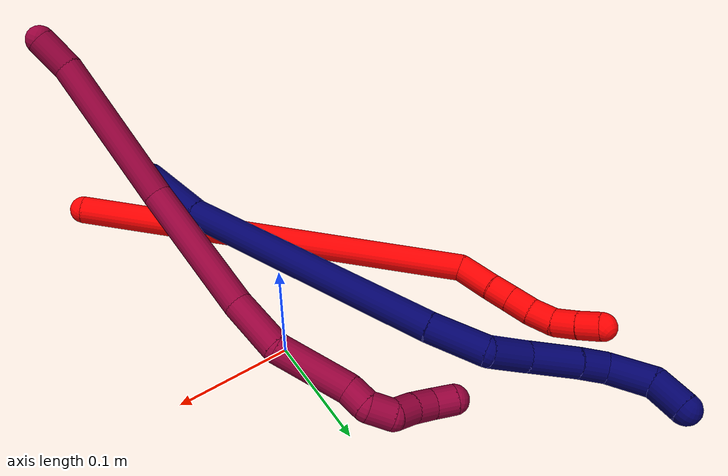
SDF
<sdf version="1.7">
 <world name="default">
  <model name="2">
   <static>0</static>
   <link name="2">
    <collision name="collision-cylinder-e_1_1_4">
     <pose>-0.105956 0.101033 -0.103489 -2.3682 -0.632273 1.35352</pose>
     <geometry><cylinder><radius>0.0125</radius><length>0.358577</length></cylinder></geometry>
     <surface>
      <friction><ode><mu>1.16</mu><mu2>1.16</mu2><slip1>0</slip1><slip2>0</slip2></ode></friction>
      <contact><ode><kp>1e+06</kp><kd>1</kd><max_vel>0</max_vel><min_depth>0.001</min_depth></ode></contact>
     </surface>
    </collision>
    <visual name="visual-cylinder-e_1_1_4">
     <pose>-0.105956 0.101033 -0.103489 -2.3682 -0.632273 1.35352</pose>
     <geometry><cylinder><radius>0.0125</radius><length>0.358577</length></cylinder></geometry>
     <material><ambient>1 0 0 1</ambient></material>
    </visual>
    <collision name="collision-cylinder-e_2_4_5">
     <pose>-0.214837 0.205579 -0.22439 -2.9425 -0.163216 1.37234</pose>
     <geometry><cylinder><radius>0.0125</radius><length>0.036004</length></cylinder></geometry>
     <surface>
      <friction><ode><mu>1.16</mu><mu2>1.16</mu2><slip1>0</slip1><slip2>0</slip2></ode></friction>
      <contact><ode><kp>1e+06</kp><kd>1</kd><max_vel>0</max_vel><min_depth>0.001</min_depth></ode></contact>
     </surface>
    </collision>
    <visual name="visual-cylinder-e_2_4_5">
     <pose>-0.214837 0.205579 -0.22439 -2.9425 -0.163216 1.37234</pose>
     <geometry><cylinder><radius>0.0125</radius><length>0.036004</length></cylinder></geometry>
     <material><ambient>1 0 0 1</ambient></material>
    </visual>
    <collision name="collision-cylinder-e_3_5_6">
     <pose>-0.220353 0.211334 -0.251234 -2.90826 -0.261164 1.68439</pose>
     <geometry><cylinder><radius>0.0125</radius><length>0.02007</length></cylinder></geometry>
     <surface>
      <friction><ode><mu>1.16</mu><mu2>1.16</mu2><slip1>0</slip1><slip2>0</slip2></ode></friction>
      <contact><ode><kp>1e+06</kp><kd>1</kd><max_vel>0</max_vel><min_depth>0.001</min_depth></ode></contact>
     </surface>
    </collision>
    <visual name="visual-cylinder-e_3_5_6">
     <pose>-0.220353 0.211334 -0.251234 -2.90826 -0.261164 1.68439</pose>
     <geometry><cylinder><radius>0.0125</radius><length>0.02007</length></cylinder></geometry>
     <material><ambient>1 0 0 1</ambient></material>
    </visual>
    <collision name="collision-cylinder-e_4_6_7">
     <pose>-0.225809 0.215929 -0.270898 -2.91553 -0.266358 1.73575</pose>
     <geometry><cylinder><radius>0.0125</radius><length>0.021766</length></cylinder></geometry>
     <surface>
      <friction><ode><mu>1.16</mu><mu2>1.16</mu2><slip1>0</slip1><slip2>0</slip2></ode></friction>
      <contact><ode><kp>1e+06</kp><kd>1</kd><max_vel>0</max_vel><min_depth>0.001</min_depth></ode></contact>
     </surface>
    </collision>
    <visual name="visual-cylinder-e_4_6_7">
     <pose>-0.225809 0.215929 -0.270898 -2.91553 -0.266358 1.73575</pose>
     <geometry><cylinder><radius>0.0125</radius><length>0.021766</length></cylinder></geometry>
     <material><ambient>1 0 0 1</ambient></material>
    </visual>
    <collision name="collision-cylinder-e_5_7_8">
     <pose>-0.230311 0.222014 -0.291518 -2.79666 -0.147308 0.801338</pose>
     <geometry><cylinder><radius>0.0125</radius><length>0.022317</length></cylinder></geometry>
     <surface>
      <friction><ode><mu>1.16</mu><mu2>1.16</mu2><slip1>0</slip1><slip2>0</slip2></ode></friction>
      <contact><ode><kp>1e+06</kp><kd>1</kd><max_vel>0</max_vel><min_depth>0.001</min_depth></ode></contact>
     </surface>
    </collision>
    <visual name="visual-cylinder-e_5_7_8">
     <pose>-0.230311 0.222014 -0.291518 -2.79666 -0.147308 0.801338</pose>
     <geometry><cylinder><radius>0.0125</radius><length>0.022317</length></cylinder></geometry>
     <material><ambient>1 0 0 1</ambient></material>
    </visual>
    <collision name="collision-cylinder-e_6_8_9">
     <pose>-0.232116 0.232036 -0.310396 -2.50399 -0.015827 0.047943</pose>
     <geometry><cylinder><radius>0.0125</radius><length>0.021135</length></cylinder></geometry>
     <surface>
      <friction><ode><mu>1.16</mu><mu2>1.16</mu2><slip1>0</slip1><slip2>0</slip2></ode></friction>
      <contact><ode><kp>1e+06</kp><kd>1</kd><max_vel>0</max_vel><min_depth>0.001</min_depth></ode></contact>
     </surface>
    </collision>
    <visual name="visual-cylinder-e_6_8_9">
     <pose>-0.232116 0.232036 -0.310396 -2.50399 -0.015827 0.047943</pose>
     <geometry><cylinder><radius>0.0125</radius><length>0.021135</length></cylinder></geometry>
     <material><ambient>1 0 0 1</ambient></material>
    </visual>
    <collision name="collision-cylinder-e_7_9_2">
     <pose>-0.232449 0.24476 -0.326625 -2.44806 -0.016413 0.045412</pose>
     <geometry><cylinder><radius>0.0125</radius><length>0.020131</length></cylinder></geometry>
     <surface>
      <friction><ode><mu>1.16</mu><mu2>1.16</mu2><slip1>0</slip1><slip2>0</slip2></ode></friction>
      <contact><ode><kp>1e+06</kp><kd>1</kd><max_vel>0</max_vel><min_depth>0.001</min_depth></ode></contact>
     </surface>
    </collision>
    <visual name="visual-cylinder-e_7_9_2">
     <pose>-0.232449 0.24476 -0.326625 -2.44806 -0.016413 0.045412</pose>
     <geometry><cylinder><radius>0.0125</radius><length>0.020131</length></cylinder></geometry>
     <material><ambient>1 0 0 1</ambient></material>
    </visual>
    <collision name="collision-sphere-2">
     <pose>-0.232614 0.251193 -0.334365 0 -0 0</pose>
     <geometry><sphere><radius>0.0125</radius></sphere></geometry>
     <surface>
      <friction><ode><mu>1.16</mu><mu2>1.16</mu2><slip1>0</slip1><slip2>0</slip2></ode></friction>
      <contact><ode><kp>1e+06</kp><kd>1</kd><max_vel>0</max_vel><min_depth>0.001</min_depth></ode></contact>
     </surface>
    </collision>
    <visual name="visual-sphere-2">
     <pose>-0.232614 0.251193 -0.334365 0 -0 0</pose>
     <geometry><sphere><radius>0.0125</radius></sphere></geometry>
     <material><ambient>1 0 0 1</ambient></material>
    </visual>
    <collision name="collision-sphere-9">
     <pose>-0.232284 0.238326 -0.318886 0 -0 0</pose>
     <geometry><sphere><radius>0.0125</radius></sphere></geometry>
     <surface>
      <friction><ode><mu>1.16</mu><mu2>1.16</mu2><slip1>0</slip1><slip2>0</slip2></ode></friction>
      <contact><ode><kp>1e+06</kp><kd>1</kd><max_vel>0</max_vel><min_depth>0.001</min_depth></ode></contact>
     </surface>
    </collision>
    <visual name="visual-sphere-9">
     <pose>-0.232284 0.238326 -0.318886 0 -0 0</pose>
     <geometry><sphere><radius>0.0125</radius></sphere></geometry>
     <material><ambient>1 0 0 1</ambient></material>
    </visual>
    <collision name="collision-sphere-4">
     <pose>-0.211912 0.202066 -0.206979 0 -0 0</pose>
     <geometry><sphere><radius>0.0125</radius></sphere></geometry>
     <surface>
      <friction><ode><mu>1.16</mu><mu2>1.16</mu2><slip1>0</slip1><slip2>0</slip2></ode></friction>
      <contact><ode><kp>1e+06</kp><kd>1</kd><max_vel>0</max_vel><min_depth>0.001</min_depth></ode></contact>
     </surface>
    </collision>
    <visual name="visual-sphere-4">
     <pose>-0.211912 0.202066 -0.206979 0 -0 0</pose>
     <geometry><sphere><radius>0.0125</radius></sphere></geometry>
     <material><ambient>1 0 0 1</ambient></material>
    </visual>
    <collision name="collision-sphere-1">
     <geometry><sphere><radius>0.0125</radius></sphere></geometry>
     <surface>
      <friction><ode><mu>1.16</mu><mu2>1.16</mu2><slip1>0</slip1><slip2>0</slip2></ode></friction>
      <contact><ode><kp>1e+06</kp><kd>1</kd><max_vel>0</max_vel><min_depth>0.001</min_depth></ode></contact>
     </surface>
    </collision>
    <visual name="visual-sphere-1">
     <geometry><sphere><radius>0.0125</radius></sphere></geometry>
     <material><ambient>1 0 0 1</ambient></material>
    </visual>
    <collision name="collision-sphere-8">
     <pose>-0.231949 0.225746 -0.301905 0 -0 0</pose>
     <geometry><sphere><radius>0.0125</radius></sphere></geometry>
     <surface>
      <friction><ode><mu>1.16</mu><mu2>1.16</mu2><slip1>0</slip1><slip2>0</slip2></ode></friction>
      <contact><ode><kp>1e+06</kp><kd>1</kd><max_vel>0</max_vel><min_depth>0.001</min_depth></ode></contact>
     </surface>
    </collision>
    <visual name="visual-sphere-8">
     <pose>-0.231949 0.225746 -0.301905 0 -0 0</pose>
     <geometry><sphere><radius>0.0125</radius></sphere></geometry>
     <material><ambient>1 0 0 1</ambient></material>
    </visual>
    <collision name="collision-sphere-5">
     <pose>-0.217762 0.209092 -0.241802 0 -0 0</pose>
     <geometry><sphere><radius>0.0125</radius></sphere></geometry>
     <surface>
      <friction><ode><mu>1.16</mu><mu2>1.16</mu2><slip1>0</slip1><slip2>0</slip2></ode></friction>
      <contact><ode><kp>1e+06</kp><kd>1</kd><max_vel>0</max_vel><min_depth>0.001</min_depth></ode></contact>
     </surface>
    </collision>
    <visual name="visual-sphere-5">
     <pose>-0.217762 0.209092 -0.241802 0 -0 0</pose>
     <geometry><sphere><radius>0.0125</radius></sphere></geometry>
     <material><ambient>1 0 0 1</ambient></material>
    </visual>
    <collision name="collision-sphere-6">
     <pose>-0.222944 0.213575 -0.260666 0 -0 0</pose>
     <geometry><sphere><radius>0.0125</radius></sphere></geometry>
     <surface>
      <friction><ode><mu>1.16</mu><mu2>1.16</mu2><slip1>0</slip1><slip2>0</slip2></ode></friction>
      <contact><ode><kp>1e+06</kp><kd>1</kd><max_vel>0</max_vel><min_depth>0.001</min_depth></ode></contact>
     </surface>
    </collision>
    <visual name="visual-sphere-6">
     <pose>-0.222944 0.213575 -0.260666 0 -0 0</pose>
     <geometry><sphere><radius>0.0125</radius></sphere></geometry>
     <material><ambient>1 0 0 1</ambient></material>
    </visual>
    <collision name="collision-sphere-7">
     <pose>-0.228673 0.218282 -0.281131 0 -0 0</pose>
     <geometry><sphere><radius>0.0125</radius></sphere></geometry>
     <surface>
      <friction><ode><mu>1.16</mu><mu2>1.16</mu2><slip1>0</slip1><slip2>0</slip2></ode></friction>
      <contact><ode><kp>1e+06</kp><kd>1</kd><max_vel>0</max_vel><min_depth>0.001</min_depth></ode></contact>
     </surface>
    </collision>
    <visual name="visual-sphere-7">
     <pose>-0.228673 0.218282 -0.281131 0 -0 0</pose>
     <geometry><sphere><radius>0.0125</radius></sphere></geometry>
     <material><ambient>1 0 0 1</ambient></material>
    </visual>
    <inertial>
     <pose>-0.139582 0.134714 -0.151536 0 -0 0</pose>
     <mass>0.5</mass>
     <inertia>
      <ixx>0.003704</ixx>
      <ixy>0</ixy>
      <ixz>0</ixz>
      <iyy>0.004023</iyy>
      <iyz>0</iyz>
      <izz>7.8e-05</izz>
     </inertia>
    </inertial>
   </link>
   <pose>0.09243 -0.210574 0.05069 1.63882 -0.922378 -0.121097</pose>
  </model>
  <model name="7">
   <static>0</static>
   <link name="7">
    <collision name="collision-cylinder-e_1_1_4">
     <pose>-0.007936 0.030449 0.004948 -1.40969 -0.251791 0.214488</pose>
     <geometry><cylinder><radius>0.0125</radius><length>0.063707</length></cylinder></geometry>
     <surface>
      <friction><ode><mu>1.16</mu><mu2>1.16</mu2><slip1>0</slip1><slip2>0</slip2></ode></friction>
      <contact><ode><kp>1e+06</kp><kd>1</kd><max_vel>0</max_vel><min_depth>0.001</min_depth></ode></contact>
     </surface>
    </collision>
    <visual name="visual-cylinder-e_1_1_4">
     <pose>-0.007936 0.030449 0.004948 -1.40969 -0.251791 0.214488</pose>
     <geometry><cylinder><radius>0.0125</radius><length>0.063707</length></cylinder></geometry>
     <material><ambient>0.003922 0 0.403922 1</ambient></material>
    </visual>
    <collision name="collision-cylinder-e_2_4_5">
     <pose>-0.0639 0.159757 0.037023 -1.303 -0.438147 0.336361</pose>
     <geometry><cylinder><radius>0.0125</radius><length>0.22641</length></cylinder></geometry>
     <surface>
      <friction><ode><mu>1.16</mu><mu2>1.16</mu2><slip1>0</slip1><slip2>0</slip2></ode></friction>
      <contact><ode><kp>1e+06</kp><kd>1</kd><max_vel>0</max_vel><min_depth>0.001</min_depth></ode></contact>
     </surface>
    </collision>
    <visual name="visual-cylinder-e_2_4_5">
     <pose>-0.0639 0.159757 0.037023 -1.303 -0.438147 0.336361</pose>
     <geometry><cylinder><radius>0.0125</radius><length>0.22641</length></cylinder></geometry>
     <material><ambient>0.003922 0 0.403922 1</ambient></material>
    </visual>
    <collision name="collision-cylinder-e_3_5_6">
     <pose>-0.12315 0.278462 0.070463 -1.26275 -0.494157 0.364777</pose>
     <geometry><cylinder><radius>0.0125</radius><length>0.047318</length></cylinder></geometry>
     <surface>
      <friction><ode><mu>1.16</mu><mu2>1.16</mu2><slip1>0</slip1><slip2>0</slip2></ode></friction>
      <contact><ode><kp>1e+06</kp><kd>1</kd><max_vel>0</max_vel><min_depth>0.001</min_depth></ode></contact>
     </surface>
    </collision>
    <visual name="visual-cylinder-e_3_5_6">
     <pose>-0.12315 0.278462 0.070463 -1.26275 -0.494157 0.364777</pose>
     <geometry><cylinder><radius>0.0125</radius><length>0.047318</length></cylinder></geometry>
     <material><ambient>0.003922 0 0.403922 1</ambient></material>
    </visual>
    <collision name="collision-cylinder-e_4_6_7">
     <pose>-0.149595 0.305518 0.077428 -1.48088 -1.12702 1.04734</pose>
     <geometry><cylinder><radius>0.0125</radius><length>0.033711</length></cylinder></geometry>
     <surface>
      <friction><ode><mu>1.16</mu><mu2>1.16</mu2><slip1>0</slip1><slip2>0</slip2></ode></friction>
      <contact><ode><kp>1e+06</kp><kd>1</kd><max_vel>0</max_vel><min_depth>0.001</min_depth></ode></contact>
     </surface>
    </collision>
    <visual name="visual-cylinder-e_4_6_7">
     <pose>-0.149595 0.305518 0.077428 -1.48088 -1.12702 1.04734</pose>
     <geometry><cylinder><radius>0.0125</radius><length>0.033711</length></cylinder></geometry>
     <material><ambient>0.003922 0 0.403922 1</ambient></material>
    </visual>
    <collision name="collision-cylinder-e_5_7_8">
     <pose>-0.181964 0.323612 0.08207 -1.21931 -0.976211 0.710209</pose>
     <geometry><cylinder><radius>0.0125</radius><length>0.041398</length></cylinder></geometry>
     <surface>
      <friction><ode><mu>1.16</mu><mu2>1.16</mu2><slip1>0</slip1><slip2>0</slip2></ode></friction>
      <contact><ode><kp>1e+06</kp><kd>1</kd><max_vel>0</max_vel><min_depth>0.001</min_depth></ode></contact>
     </surface>
    </collision>
    <visual name="visual-cylinder-e_5_7_8">
     <pose>-0.181964 0.323612 0.08207 -1.21931 -0.976211 0.710209</pose>
     <geometry><cylinder><radius>0.0125</radius><length>0.041398</length></cylinder></geometry>
     <material><ambient>0.003922 0 0.403922 1</ambient></material>
    </visual>
    <collision name="collision-cylinder-e_6_8_9">
     <pose>-0.209047 0.340933 0.087671 -1.32586 -0.982193 0.79113</pose>
     <geometry><cylinder><radius>0.0125</radius><length>0.023894</length></cylinder></geometry>
     <surface>
      <friction><ode><mu>1.16</mu><mu2>1.16</mu2><slip1>0</slip1><slip2>0</slip2></ode></friction>
      <contact><ode><kp>1e+06</kp><kd>1</kd><max_vel>0</max_vel><min_depth>0.001</min_depth></ode></contact>
     </surface>
    </collision>
    <visual name="visual-cylinder-e_6_8_9">
     <pose>-0.209047 0.340933 0.087671 -1.32586 -0.982193 0.79113</pose>
     <geometry><cylinder><radius>0.0125</radius><length>0.023894</length></cylinder></geometry>
     <material><ambient>0.003922 0 0.403922 1</ambient></material>
    </visual>
    <collision name="collision-cylinder-e_7_9_10">
     <pose>-0.226194 0.361922 0.096683 -1.1002 -0.415826 0.257313</pose>
     <geometry><cylinder><radius>0.0125</radius><length>0.035702</length></cylinder></geometry>
     <surface>
      <friction><ode><mu>1.16</mu><mu2>1.16</mu2><slip1>0</slip1><slip2>0</slip2></ode></friction>
      <contact><ode><kp>1e+06</kp><kd>1</kd><max_vel>0</max_vel><min_depth>0.001</min_depth></ode></contact>
     </surface>
    </collision>
    <visual name="visual-cylinder-e_7_9_10">
     <pose>-0.226194 0.361922 0.096683 -1.1002 -0.415826 0.257313</pose>
     <geometry><cylinder><radius>0.0125</radius><length>0.035702</length></cylinder></geometry>
     <material><ambient>0.003922 0 0.403922 1</ambient></material>
    </visual>
    <collision name="collision-cylinder-e_8_10_2">
     <pose>-0.233354 0.390204 0.106456 -1.39995 0.003679 -0.003099</pose>
     <geometry><cylinder><radius>0.0125</radius><length>0.027861</length></cylinder></geometry>
     <surface>
      <friction><ode><mu>1.16</mu><mu2>1.16</mu2><slip1>0</slip1><slip2>0</slip2></ode></friction>
      <contact><ode><kp>1e+06</kp><kd>1</kd><max_vel>0</max_vel><min_depth>0.001</min_depth></ode></contact>
     </surface>
    </collision>
    <visual name="visual-cylinder-e_8_10_2">
     <pose>-0.233354 0.390204 0.106456 -1.39995 0.003679 -0.003099</pose>
     <geometry><cylinder><radius>0.0125</radius><length>0.027861</length></cylinder></geometry>
     <material><ambient>0.003922 0 0.403922 1</ambient></material>
    </visual>
    <collision name="collision-sphere-2">
     <pose>-0.233302 0.403932 0.108824 0 -0 0</pose>
     <geometry><sphere><radius>0.0125</radius></sphere></geometry>
     <surface>
      <friction><ode><mu>1.16</mu><mu2>1.16</mu2><slip1>0</slip1><slip2>0</slip2></ode></friction>
      <contact><ode><kp>1e+06</kp><kd>1</kd><max_vel>0</max_vel><min_depth>0.001</min_depth></ode></contact>
     </surface>
    </collision>
    <visual name="visual-sphere-2">
     <pose>-0.233302 0.403932 0.108824 0 -0 0</pose>
     <geometry><sphere><radius>0.0125</radius></sphere></geometry>
     <material><ambient>0.003922 0 0.403922 1</ambient></material>
    </visual>
    <collision name="collision-sphere-10">
     <pose>-0.233405 0.376477 0.104087 0 -0 0</pose>
     <geometry><sphere><radius>0.0125</radius></sphere></geometry>
     <surface>
      <friction><ode><mu>1.16</mu><mu2>1.16</mu2><slip1>0</slip1><slip2>0</slip2></ode></friction>
      <contact><ode><kp>1e+06</kp><kd>1</kd><max_vel>0</max_vel><min_depth>0.001</min_depth></ode></contact>
     </surface>
    </collision>
    <visual name="visual-sphere-10">
     <pose>-0.233405 0.376477 0.104087 0 -0 0</pose>
     <geometry><sphere><radius>0.0125</radius></sphere></geometry>
     <material><ambient>0.003922 0 0.403922 1</ambient></material>
    </visual>
    <collision name="collision-sphere-9">
     <pose>-0.218983 0.347368 0.089279 0 -0 0</pose>
     <geometry><sphere><radius>0.0125</radius></sphere></geometry>
     <surface>
      <friction><ode><mu>1.16</mu><mu2>1.16</mu2><slip1>0</slip1><slip2>0</slip2></ode></friction>
      <contact><ode><kp>1e+06</kp><kd>1</kd><max_vel>0</max_vel><min_depth>0.001</min_depth></ode></contact>
     </surface>
    </collision>
    <visual name="visual-sphere-9">
     <pose>-0.218983 0.347368 0.089279 0 -0 0</pose>
     <geometry><sphere><radius>0.0125</radius></sphere></geometry>
     <material><ambient>0.003922 0 0.403922 1</ambient></material>
    </visual>
    <collision name="collision-sphere-4">
     <pose>-0.015872 0.060899 0.009897 0 -0 0</pose>
     <geometry><sphere><radius>0.0125</radius></sphere></geometry>
     <surface>
      <friction><ode><mu>1.16</mu><mu2>1.16</mu2><slip1>0</slip1><slip2>0</slip2></ode></friction>
      <contact><ode><kp>1e+06</kp><kd>1</kd><max_vel>0</max_vel><min_depth>0.001</min_depth></ode></contact>
     </surface>
    </collision>
    <visual name="visual-sphere-4">
     <pose>-0.015872 0.060899 0.009897 0 -0 0</pose>
     <geometry><sphere><radius>0.0125</radius></sphere></geometry>
     <material><ambient>0.003922 0 0.403922 1</ambient></material>
    </visual>
    <collision name="collision-sphere-1">
     <geometry><sphere><radius>0.0125</radius></sphere></geometry>
     <surface>
      <friction><ode><mu>1.16</mu><mu2>1.16</mu2><slip1>0</slip1><slip2>0</slip2></ode></friction>
      <contact><ode><kp>1e+06</kp><kd>1</kd><max_vel>0</max_vel><min_depth>0.001</min_depth></ode></contact>
     </surface>
    </collision>
    <visual name="visual-sphere-1">
     <geometry><sphere><radius>0.0125</radius></sphere></geometry>
     <material><ambient>0.003922 0 0.403922 1</ambient></material>
    </visual>
    <collision name="collision-sphere-8">
     <pose>-0.199111 0.334498 0.086062 0 -0 0</pose>
     <geometry><sphere><radius>0.0125</radius></sphere></geometry>
     <surface>
      <friction><ode><mu>1.16</mu><mu2>1.16</mu2><slip1>0</slip1><slip2>0</slip2></ode></friction>
      <contact><ode><kp>1e+06</kp><kd>1</kd><max_vel>0</max_vel><min_depth>0.001</min_depth></ode></contact>
     </surface>
    </collision>
    <visual name="visual-sphere-8">
     <pose>-0.199111 0.334498 0.086062 0 -0 0</pose>
     <geometry><sphere><radius>0.0125</radius></sphere></geometry>
     <material><ambient>0.003922 0 0.403922 1</ambient></material>
    </visual>
    <collision name="collision-sphere-5">
     <pose>-0.111929 0.258614 0.064148 0 -0 0</pose>
     <geometry><sphere><radius>0.0125</radius></sphere></geometry>
     <surface>
      <friction><ode><mu>1.16</mu><mu2>1.16</mu2><slip1>0</slip1><slip2>0</slip2></ode></friction>
      <contact><ode><kp>1e+06</kp><kd>1</kd><max_vel>0</max_vel><min_depth>0.001</min_depth></ode></contact>
     </surface>
    </collision>
    <visual name="visual-sphere-5">
     <pose>-0.111929 0.258614 0.064148 0 -0 0</pose>
     <geometry><sphere><radius>0.0125</radius></sphere></geometry>
     <material><ambient>0.003922 0 0.403922 1</ambient></material>
    </visual>
    <collision name="collision-sphere-6">
     <pose>-0.134371 0.298311 0.076779 0 -0 0</pose>
     <geometry><sphere><radius>0.0125</radius></sphere></geometry>
     <surface>
      <friction><ode><mu>1.16</mu><mu2>1.16</mu2><slip1>0</slip1><slip2>0</slip2></ode></friction>
      <contact><ode><kp>1e+06</kp><kd>1</kd><max_vel>0</max_vel><min_depth>0.001</min_depth></ode></contact>
     </surface>
    </collision>
    <visual name="visual-sphere-6">
     <pose>-0.134371 0.298311 0.076779 0 -0 0</pose>
     <geometry><sphere><radius>0.0125</radius></sphere></geometry>
     <material><ambient>0.003922 0 0.403922 1</ambient></material>
    </visual>
    <collision name="collision-sphere-7">
     <pose>-0.164818 0.312726 0.078078 0 -0 0</pose>
     <geometry><sphere><radius>0.0125</radius></sphere></geometry>
     <surface>
      <friction><ode><mu>1.16</mu><mu2>1.16</mu2><slip1>0</slip1><slip2>0</slip2></ode></friction>
      <contact><ode><kp>1e+06</kp><kd>1</kd><max_vel>0</max_vel><min_depth>0.001</min_depth></ode></contact>
     </surface>
    </collision>
    <visual name="visual-sphere-7">
     <pose>-0.164818 0.312726 0.078078 0 -0 0</pose>
     <geometry><sphere><radius>0.0125</radius></sphere></geometry>
     <material><ambient>0.003922 0 0.403922 1</ambient></material>
    </visual>
    <inertial>
     <pose>-0.105897 0.213843 0.053104 0 -0 0</pose>
     <mass>0.5</mass>
     <inertia>
      <ixx>0.001167</ixx>
      <ixy>0</ixy>
      <ixz>0</ixz>
      <iyy>0.000738</iyy>
      <iyz>0</iyz>
      <izz>-0.000451</izz>
     </inertia>
    </inertial>
   </link>
   <pose>0.032927 -0.174883 0.088446 -0.1494 -0.349114 -0.007003</pose>
  </model>
  <model name="8">
   <static>0</static>
   <link name="8">
    <collision name="collision-cylinder-e_1_1_4">
     <pose>-0.008348 0.010872 -0.007399 -2.16838 -0.565583 1.00456</pose>
     <geometry><cylinder><radius>0.0125</radius><length>0.031153</length></cylinder></geometry>
     <surface>
      <friction><ode><mu>1.16</mu><mu2>1.16</mu2><slip1>0</slip1><slip2>0</slip2></ode></friction>
      <contact><ode><kp>1e+06</kp><kd>1</kd><max_vel>0</max_vel><min_depth>0.001</min_depth></ode></contact>
     </surface>
    </collision>
    <visual name="visual-cylinder-e_1_1_4">
     <pose>-0.008348 0.010872 -0.007399 -2.16838 -0.565583 1.00456</pose>
     <geometry><cylinder><radius>0.0125</radius><length>0.031153</length></cylinder></geometry>
     <material><ambient>0.584314 0 0.227451 1</ambient></material>
    </visual>
    <collision name="collision-cylinder-e_2_4_5">
     <pose>-0.038805 0.072912 -0.05177 -2.19648 -0.336889 0.642308</pose>
     <geometry><cylinder><radius>0.0125</radius><length>0.133775</length></cylinder></geometry>
     <surface>
      <friction><ode><mu>1.16</mu><mu2>1.16</mu2><slip1>0</slip1><slip2>0</slip2></ode></friction>
      <contact><ode><kp>1e+06</kp><kd>1</kd><max_vel>0</max_vel><min_depth>0.001</min_depth></ode></contact>
     </surface>
    </collision>
    <visual name="visual-cylinder-e_2_4_5">
     <pose>-0.038805 0.072912 -0.05177 -2.19648 -0.336889 0.642308</pose>
     <geometry><cylinder><radius>0.0125</radius><length>0.133775</length></cylinder></geometry>
     <material><ambient>0.584314 0 0.227451 1</ambient></material>
    </visual>
    <collision name="collision-cylinder-e_3_5_6">
     <pose>-0.071807 0.17633 -0.114322 -2.0261 -0.185091 0.295391</pose>
     <geometry><cylinder><radius>0.0125</radius><length>0.118373</length></cylinder></geometry>
     <surface>
      <friction><ode><mu>1.16</mu><mu2>1.16</mu2><slip1>0</slip1><slip2>0</slip2></ode></friction>
      <contact><ode><kp>1e+06</kp><kd>1</kd><max_vel>0</max_vel><min_depth>0.001</min_depth></ode></contact>
     </surface>
    </collision>
    <visual name="visual-cylinder-e_3_5_6">
     <pose>-0.071807 0.17633 -0.114322 -2.0261 -0.185091 0.295391</pose>
     <geometry><cylinder><radius>0.0125</radius><length>0.118373</length></cylinder></geometry>
     <material><ambient>0.584314 0 0.227451 1</ambient></material>
    </visual>
    <collision name="collision-cylinder-e_4_6_7">
     <pose>-0.084466 0.253115 -0.146247 -1.82377 -0.069578 0.089828</pose>
     <geometry><cylinder><radius>0.0125</radius><length>0.050808</length></cylinder></geometry>
     <surface>
      <friction><ode><mu>1.16</mu><mu2>1.16</mu2><slip1>0</slip1><slip2>0</slip2></ode></friction>
      <contact><ode><kp>1e+06</kp><kd>1</kd><max_vel>0</max_vel><min_depth>0.001</min_depth></ode></contact>
     </surface>
    </collision>
    <visual name="visual-cylinder-e_4_6_7">
     <pose>-0.084466 0.253115 -0.146247 -1.82377 -0.069578 0.089828</pose>
     <geometry><cylinder><radius>0.0125</radius><length>0.050808</length></cylinder></geometry>
     <material><ambient>0.584314 0 0.227451 1</ambient></material>
    </visual>
    <collision name="collision-cylinder-e_5_7_8">
     <pose>-0.100798 0.306084 -0.1566 -1.71091 -0.469449 0.537153</pose>
     <geometry><cylinder><radius>0.0125</radius><length>0.064395</length></cylinder></geometry>
     <surface>
      <friction><ode><mu>1.16</mu><mu2>1.16</mu2><slip1>0</slip1><slip2>0</slip2></ode></friction>
      <contact><ode><kp>1e+06</kp><kd>1</kd><max_vel>0</max_vel><min_depth>0.001</min_depth></ode></contact>
     </surface>
    </collision>
    <visual name="visual-cylinder-e_5_7_8">
     <pose>-0.100798 0.306084 -0.1566 -1.71091 -0.469449 0.537153</pose>
     <geometry><cylinder><radius>0.0125</radius><length>0.064395</length></cylinder></geometry>
     <material><ambient>0.584314 0 0.227451 1</ambient></material>
    </visual>
    <collision name="collision-cylinder-e_6_8_9">
     <pose>-0.116003 0.344344 -0.162374 -1.74842 -0.063943 0.076433</pose>
     <geometry><cylinder><radius>0.0125</radius><length>0.020009</length></cylinder></geometry>
     <surface>
      <friction><ode><mu>1.16</mu><mu2>1.16</mu2><slip1>0</slip1><slip2>0</slip2></ode></friction>
      <contact><ode><kp>1e+06</kp><kd>1</kd><max_vel>0</max_vel><min_depth>0.001</min_depth></ode></contact>
     </surface>
    </collision>
    <visual name="visual-cylinder-e_6_8_9">
     <pose>-0.116003 0.344344 -0.162374 -1.74842 -0.063943 0.076433</pose>
     <geometry><cylinder><radius>0.0125</radius><length>0.020009</length></cylinder></geometry>
     <material><ambient>0.584314 0 0.227451 1</ambient></material>
    </visual>
    <collision name="collision-cylinder-e_7_9_10">
     <pose>-0.123708 0.362168 -0.164501 -1.61615 -0.72313 0.753663</pose>
     <geometry><cylinder><radius>0.0125</radius><length>0.021354</length></cylinder></geometry>
     <surface>
      <friction><ode><mu>1.16</mu><mu2>1.16</mu2><slip1>0</slip1><slip2>0</slip2></ode></friction>
      <contact><ode><kp>1e+06</kp><kd>1</kd><max_vel>0</max_vel><min_depth>0.001</min_depth></ode></contact>
     </surface>
    </collision>
    <visual name="visual-cylinder-e_7_9_10">
     <pose>-0.123708 0.362168 -0.164501 -1.61615 -0.72313 0.753663</pose>
     <geometry><cylinder><radius>0.0125</radius><length>0.021354</length></cylinder></geometry>
     <material><ambient>0.584314 0 0.227451 1</ambient></material>
    </visual>
    <collision name="collision-cylinder-e_8_10_11">
     <pose>-0.140595 0.371435 -0.163433 -0.726196 -1.37832 0.606762</pose>
     <geometry><cylinder><radius>0.0125</radius><length>0.020012</length></cylinder></geometry>
     <surface>
      <friction><ode><mu>1.16</mu><mu2>1.16</mu2><slip1>0</slip1><slip2>0</slip2></ode></friction>
      <contact><ode><kp>1e+06</kp><kd>1</kd><max_vel>0</max_vel><min_depth>0.001</min_depth></ode></contact>
     </surface>
    </collision>
    <visual name="visual-cylinder-e_8_10_11">
     <pose>-0.140595 0.371435 -0.163433 -0.726196 -1.37832 0.606762</pose>
     <geometry><cylinder><radius>0.0125</radius><length>0.020012</length></cylinder></geometry>
     <material><ambient>0.584314 0 0.227451 1</ambient></material>
    </visual>
    <collision name="collision-cylinder-e_9_11_12">
     <pose>-0.159953 0.3754 -0.160475 -1.05523 -1.25691 0.801184</pose>
     <geometry><cylinder><radius>0.0125</radius><length>0.020054</length></cylinder></geometry>
     <surface>
      <friction><ode><mu>1.16</mu><mu2>1.16</mu2><slip1>0</slip1><slip2>0</slip2></ode></friction>
      <contact><ode><kp>1e+06</kp><kd>1</kd><max_vel>0</max_vel><min_depth>0.001</min_depth></ode></contact>
     </surface>
    </collision>
    <visual name="visual-cylinder-e_9_11_12">
     <pose>-0.159953 0.3754 -0.160475 -1.05523 -1.25691 0.801184</pose>
     <geometry><cylinder><radius>0.0125</radius><length>0.020054</length></cylinder></geometry>
     <material><ambient>0.584314 0 0.227451 1</ambient></material>
    </visual>
    <collision name="collision-cylinder-e_10_12_2">
     <pose>-0.177489 0.383038 -0.155452 -0.955225 -0.922756 0.503719</pose>
     <geometry><cylinder><radius>0.0125</radius><length>0.020067</length></cylinder></geometry>
     <surface>
      <friction><ode><mu>1.16</mu><mu2>1.16</mu2><slip1>0</slip1><slip2>0</slip2></ode></friction>
      <contact><ode><kp>1e+06</kp><kd>1</kd><max_vel>0</max_vel><min_depth>0.001</min_depth></ode></contact>
     </surface>
    </collision>
    <visual name="visual-cylinder-e_10_12_2">
     <pose>-0.177489 0.383038 -0.155452 -0.955225 -0.922756 0.503719</pose>
     <geometry><cylinder><radius>0.0125</radius><length>0.020067</length></cylinder></geometry>
     <material><ambient>0.584314 0 0.227451 1</ambient></material>
    </visual>
    <collision name="collision-sphere-2">
     <pose>-0.185489 0.387983 -0.151955 0 -0 0</pose>
     <geometry><sphere><radius>0.0125</radius></sphere></geometry>
     <surface>
      <friction><ode><mu>1.16</mu><mu2>1.16</mu2><slip1>0</slip1><slip2>0</slip2></ode></friction>
      <contact><ode><kp>1e+06</kp><kd>1</kd><max_vel>0</max_vel><min_depth>0.001</min_depth></ode></contact>
     </surface>
    </collision>
    <visual name="visual-sphere-2">
     <pose>-0.185489 0.387983 -0.151955 0 -0 0</pose>
     <geometry><sphere><radius>0.0125</radius></sphere></geometry>
     <material><ambient>0.584314 0 0.227451 1</ambient></material>
    </visual>
    <collision name="collision-sphere-12">
     <pose>-0.16949 0.378093 -0.158949 0 -0 0</pose>
     <geometry><sphere><radius>0.0125</radius></sphere></geometry>
     <surface>
      <friction><ode><mu>1.16</mu><mu2>1.16</mu2><slip1>0</slip1><slip2>0</slip2></ode></friction>
      <contact><ode><kp>1e+06</kp><kd>1</kd><max_vel>0</max_vel><min_depth>0.001</min_depth></ode></contact>
     </surface>
    </collision>
    <visual name="visual-sphere-12">
     <pose>-0.16949 0.378093 -0.158949 0 -0 0</pose>
     <geometry><sphere><radius>0.0125</radius></sphere></geometry>
     <material><ambient>0.584314 0 0.227451 1</ambient></material>
    </visual>
    <collision name="collision-sphere-11">
     <pose>-0.150416 0.372706 -0.162002 0 -0 0</pose>
     <geometry><sphere><radius>0.0125</radius></sphere></geometry>
     <surface>
      <friction><ode><mu>1.16</mu><mu2>1.16</mu2><slip1>0</slip1><slip2>0</slip2></ode></friction>
      <contact><ode><kp>1e+06</kp><kd>1</kd><max_vel>0</max_vel><min_depth>0.001</min_depth></ode></contact>
     </surface>
    </collision>
    <visual name="visual-sphere-11">
     <pose>-0.150416 0.372706 -0.162002 0 -0 0</pose>
     <geometry><sphere><radius>0.0125</radius></sphere></geometry>
     <material><ambient>0.584314 0 0.227451 1</ambient></material>
    </visual>
    <collision name="collision-sphere-10">
     <pose>-0.130773 0.370164 -0.164864 0 -0 0</pose>
     <geometry><sphere><radius>0.0125</radius></sphere></geometry>
     <surface>
      <friction><ode><mu>1.16</mu><mu2>1.16</mu2><slip1>0</slip1><slip2>0</slip2></ode></friction>
      <contact><ode><kp>1e+06</kp><kd>1</kd><max_vel>0</max_vel><min_depth>0.001</min_depth></ode></contact>
     </surface>
    </collision>
    <visual name="visual-sphere-10">
     <pose>-0.130773 0.370164 -0.164864 0 -0 0</pose>
     <geometry><sphere><radius>0.0125</radius></sphere></geometry>
     <material><ambient>0.584314 0 0.227451 1</ambient></material>
    </visual>
    <collision name="collision-sphere-9">
     <pose>-0.116642 0.354171 -0.164138 0 -0 0</pose>
     <geometry><sphere><radius>0.0125</radius></sphere></geometry>
     <surface>
      <friction><ode><mu>1.16</mu><mu2>1.16</mu2><slip1>0</slip1><slip2>0</slip2></ode></friction>
      <contact><ode><kp>1e+06</kp><kd>1</kd><max_vel>0</max_vel><min_depth>0.001</min_depth></ode></contact>
     </surface>
    </collision>
    <visual name="visual-sphere-9">
     <pose>-0.116642 0.354171 -0.164138 0 -0 0</pose>
     <geometry><sphere><radius>0.0125</radius></sphere></geometry>
     <material><ambient>0.584314 0 0.227451 1</ambient></material>
    </visual>
    <collision name="collision-sphere-4">
     <pose>-0.016695 0.021744 -0.014799 0 -0 0</pose>
     <geometry><sphere><radius>0.0125</radius></sphere></geometry>
     <surface>
      <friction><ode><mu>1.16</mu><mu2>1.16</mu2><slip1>0</slip1><slip2>0</slip2></ode></friction>
      <contact><ode><kp>1e+06</kp><kd>1</kd><max_vel>0</max_vel><min_depth>0.001</min_depth></ode></contact>
     </surface>
    </collision>
    <visual name="visual-sphere-4">
     <pose>-0.016695 0.021744 -0.014799 0 -0 0</pose>
     <geometry><sphere><radius>0.0125</radius></sphere></geometry>
     <material><ambient>0.584314 0 0.227451 1</ambient></material>
    </visual>
    <collision name="collision-sphere-1">
     <geometry><sphere><radius>0.0125</radius></sphere></geometry>
     <surface>
      <friction><ode><mu>1.16</mu><mu2>1.16</mu2><slip1>0</slip1><slip2>0</slip2></ode></friction>
      <contact><ode><kp>1e+06</kp><kd>1</kd><max_vel>0</max_vel><min_depth>0.001</min_depth></ode></contact>
     </surface>
    </collision>
    <visual name="visual-sphere-1">
     <geometry><sphere><radius>0.0125</radius></sphere></geometry>
     <material><ambient>0.584314 0 0.227451 1</ambient></material>
    </visual>
    <collision name="collision-sphere-8">
     <pose>-0.115364 0.334517 -0.16061 0 -0 0</pose>
     <geometry><sphere><radius>0.0125</radius></sphere></geometry>
     <surface>
      <friction><ode><mu>1.16</mu><mu2>1.16</mu2><slip1>0</slip1><slip2>0</slip2></ode></friction>
      <contact><ode><kp>1e+06</kp><kd>1</kd><max_vel>0</max_vel><min_depth>0.001</min_depth></ode></contact>
     </surface>
    </collision>
    <visual name="visual-sphere-8">
     <pose>-0.115364 0.334517 -0.16061 0 -0 0</pose>
     <geometry><sphere><radius>0.0125</radius></sphere></geometry>
     <material><ambient>0.584314 0 0.227451 1</ambient></material>
    </visual>
    <collision name="collision-sphere-5">
     <pose>-0.060915 0.124081 -0.088741 0 -0 0</pose>
     <geometry><sphere><radius>0.0125</radius></sphere></geometry>
     <surface>
      <friction><ode><mu>1.16</mu><mu2>1.16</mu2><slip1>0</slip1><slip2>0</slip2></ode></friction>
      <contact><ode><kp>1e+06</kp><kd>1</kd><max_vel>0</max_vel><min_depth>0.001</min_depth></ode></contact>
     </surface>
    </collision>
    <visual name="visual-sphere-5">
     <pose>-0.060915 0.124081 -0.088741 0 -0 0</pose>
     <geometry><sphere><radius>0.0125</radius></sphere></geometry>
     <material><ambient>0.584314 0 0.227451 1</ambient></material>
    </visual>
    <collision name="collision-sphere-6">
     <pose>-0.0827 0.228579 -0.139904 0 -0 0</pose>
     <geometry><sphere><radius>0.0125</radius></sphere></geometry>
     <surface>
      <friction><ode><mu>1.16</mu><mu2>1.16</mu2><slip1>0</slip1><slip2>0</slip2></ode></friction>
      <contact><ode><kp>1e+06</kp><kd>1</kd><max_vel>0</max_vel><min_depth>0.001</min_depth></ode></contact>
     </surface>
    </collision>
    <visual name="visual-sphere-6">
     <pose>-0.0827 0.228579 -0.139904 0 -0 0</pose>
     <geometry><sphere><radius>0.0125</radius></sphere></geometry>
     <material><ambient>0.584314 0 0.227451 1</ambient></material>
    </visual>
    <collision name="collision-sphere-7">
     <pose>-0.086232 0.277651 -0.15259 0 -0 0</pose>
     <geometry><sphere><radius>0.0125</radius></sphere></geometry>
     <surface>
      <friction><ode><mu>1.16</mu><mu2>1.16</mu2><slip1>0</slip1><slip2>0</slip2></ode></friction>
      <contact><ode><kp>1e+06</kp><kd>1</kd><max_vel>0</max_vel><min_depth>0.001</min_depth></ode></contact>
     </surface>
    </collision>
    <visual name="visual-sphere-7">
     <pose>-0.086232 0.277651 -0.15259 0 -0 0</pose>
     <geometry><sphere><radius>0.0125</radius></sphere></geometry>
     <material><ambient>0.584314 0 0.227451 1</ambient></material>
    </visual>
    <inertial>
     <pose>-0.078559 0.201615 -0.109147 0 -0 0</pose>
     <mass>0.5</mass>
     <inertia>
      <ixx>0.000485</ixx>
      <ixy>0</ixy>
      <ixz>0</ixz>
      <iyy>9.2e-05</iyy>
      <iyz>0</iyz>
      <izz>-0.000222</izz>
     </inertia>
    </inertial>
   </link>
   <pose>0.076395 -0.257678 0.201964 0.11333 -0.562471 0.15426</pose>
  </model>
 </world>
</sdf>
